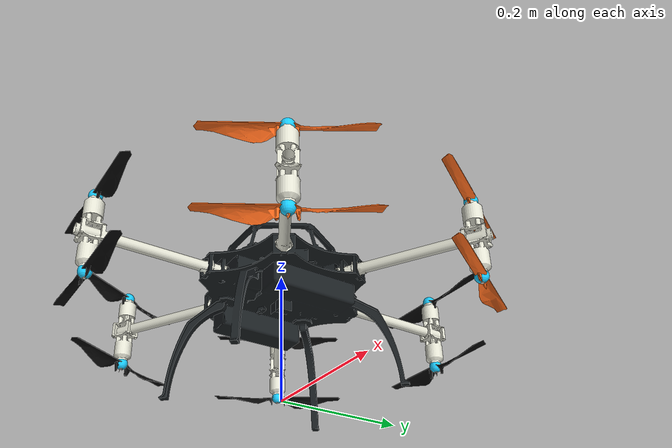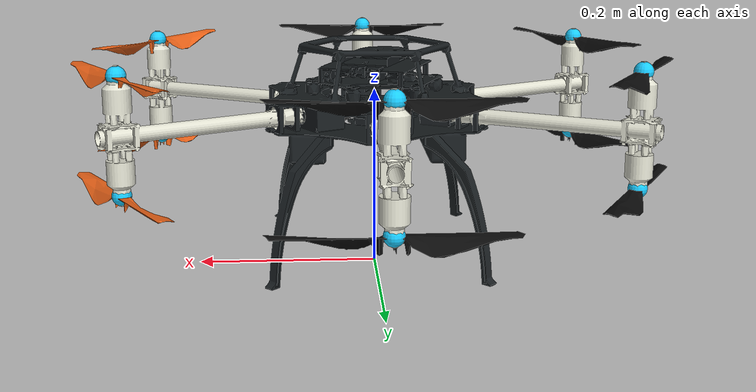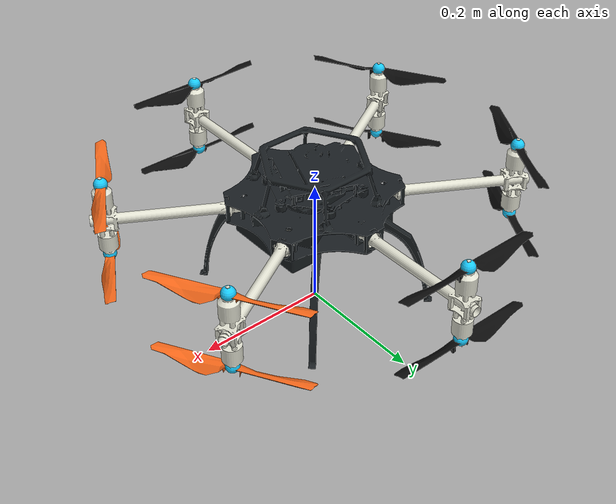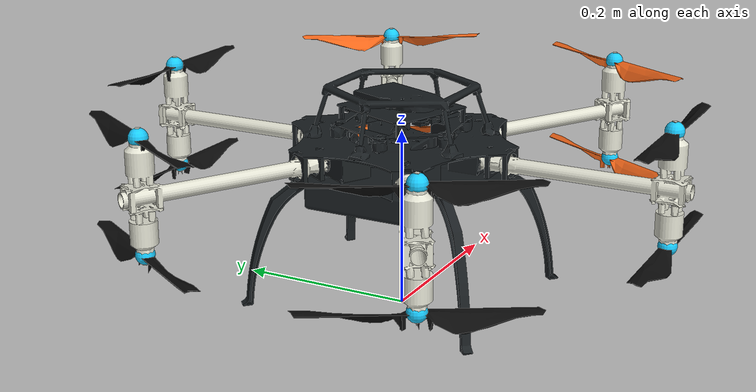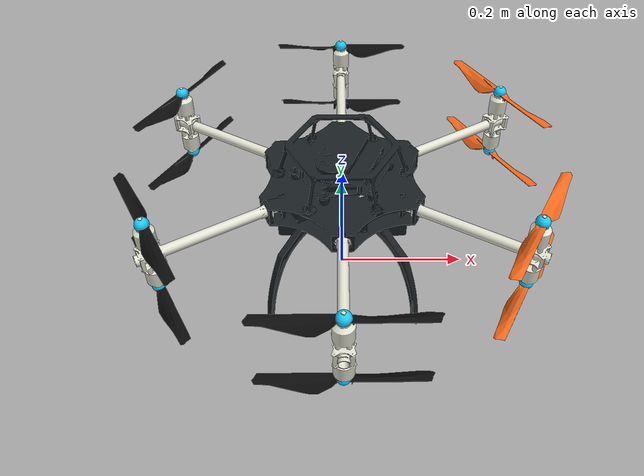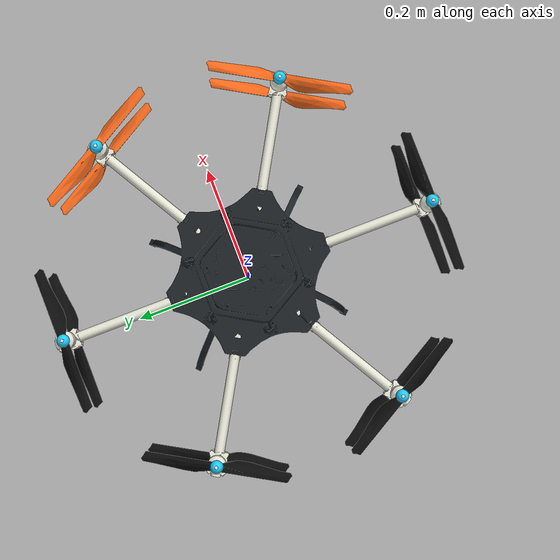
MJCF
<mujoco model="HEXA_model">
  <compiler angle="radian" autolimits="true"/>
  <option timestep="0.002" gravity="0 0 -9.81" integrator="RK4"/>
  <visual>
    <global offwidth="3840" offheight="2160"/>
  </visual>

  <default>
    <joint damping="0.02" armature="0.0002"/>
    <geom condim="3" friction="0.8 0.02 0.001"/>
    <default class="rotor">
      <joint damping="0.00002" armature="0.000001"/>
      <geom type="cylinder" size="0.1143 0.0025" rgba="0.04 0.04 0.04 0.42" mass="0.0065"/>
    </default>
    <default class="tilt">
      <joint type="hinge" axis="1 0 0" limited="true" range="-3.14159265359 3.14159265359" damping="0.25" armature="0.006"/>
      <geom type="box" size="0.035 0.085 0.025" rgba="0.88 0.88 0.82 1"/>
    </default>
  </default>

  <asset>
    <mesh name="omav_core_mesh" file="mesh/omav_core.obj"/>
    <mesh name="omav_tiltarm_mesh" file="mesh/omav_tiltarm.obj"/>
    <mesh name="propeller_cw_mesh" file="mesh/propeller_cw.obj" scale="0.1143 0.1143 0.1143"/>
    <mesh name="propeller_ccw_mesh" file="mesh/propeller_ccw.obj" scale="0.1143 0.1143 0.1143"/>
    <material name="core_mat" rgba="0.08 0.12 0.14 1"/>
    <material name="arm_mat" rgba="0.92 0.58 0.18 1"/>
    <material name="front_rotor_mat" rgba="0.96 0.42 0.12 0.5"/>
    <material name="rear_rotor_mat" rgba="0.15 0.17 0.18 0.45"/>
    <material name="mesh_core_mat" rgba="0.10 0.12 0.13 1"/>
    <material name="mesh_tilt_mat" rgba="0.88 0.88 0.82 1"/>
    <material name="mesh_prop_dark_mat" rgba="0.04 0.04 0.04 1"/>
    <material name="mesh_prop_orange_mat" rgba="0.95 0.40 0.10 1"/>
  </asset>

  <worldbody>
    <body name="base_link" pos="0 0 0.18">
      <freejoint name="root"/>
      <inertial pos="0 0 0" mass="1.61" diaginertia="0.0075 0.010939 0.01369"/>
      <site name="imu_site" pos="0 0 0" quat="0 1 0 0" size="0.004" rgba="0.1 0.7 1 1"/>
      <geom name="core_visual" type="mesh" mesh="omav_core_mesh" material="mesh_core_mat" contype="0" conaffinity="0" density="0"/>
      <geom name="core_collision" type="box" size="0.11 0.11 0.175" rgba="0 0 0 0"/>
      <geom name="arm_right_collision" type="capsule" fromto="0 0 0 0 -0.30 0" size="0.018" rgba="0 0 0 0"/>
      <geom name="arm_left_collision" type="capsule" fromto="0 0 0 0 0.30 0" size="0.018" rgba="0 0 0 0"/>
      <geom name="arm_front_left_collision" type="capsule" fromto="0 0 0 0.2598076 0.15 0" size="0.018" rgba="0 0 0 0"/>
      <geom name="arm_back_right_collision" type="capsule" fromto="0 0 0 -0.2598076 -0.15 0" size="0.018" rgba="0 0 0 0"/>
      <geom name="arm_front_right_collision" type="capsule" fromto="0 0 0 0.2598076 -0.15 0" size="0.018" rgba="0 0 0 0"/>
      <geom name="arm_back_left_collision" type="capsule" fromto="0 0 0 -0.2598076 0.15 0" size="0.018" rgba="0 0 0 0"/>

      <body name="tilt_unit_0" pos="0 -0.30 0" euler="0 0 4.71238898038">
        <joint name="tilt_unit_0_revolutejoint" class="tilt"/>
        <inertial pos="0 0 0" mass="0.277" diaginertia="0.00034257 0.0013205 0.0010037"/>
        <geom name="tilt_visual_0" type="mesh" mesh="omav_tiltarm_mesh" material="mesh_tilt_mat" contype="0" conaffinity="0" density="0"/>
        <geom name="tilt_collision_0" class="tilt" rgba="0 0 0 0"/>
        <body name="rotor_0" pos="0 0 0.06">
          <joint name="rotor_0_joint" class="rotor" axis="0 0 1"/>
          <geom name="rotor_0_disc" class="rotor" rgba="0 0 0 0"/>
          <geom name="rotor_0_visual" type="mesh" mesh="propeller_cw_mesh" material="mesh_prop_dark_mat" contype="0" conaffinity="0" density="0"/>
          <site name="rotor_0_thrust" pos="0 0 0" size="0.01" rgba="0.1 0.8 1 1"/>
        </body>
        <body name="rotor_6" pos="0 0 -0.06">
          <joint name="rotor_6_joint" class="rotor" axis="0 0 1"/>
          <geom name="rotor_6_disc" class="rotor" rgba="0 0 0 0"/>
          <geom name="rotor_6_visual" type="mesh" mesh="propeller_cw_mesh" material="mesh_prop_dark_mat" contype="0" conaffinity="0" density="0"/>
          <site name="rotor_6_thrust" pos="0 0 0" size="0.01" rgba="0.1 0.8 1 1"/>
        </body>
      </body>

      <body name="tilt_unit_1" pos="0 0.30 0" euler="0 0 1.57079632679">
        <joint name="tilt_unit_1_revolutejoint" class="tilt"/>
        <inertial pos="0 0 0" mass="0.277" diaginertia="0.00034257 0.0013205 0.0010037"/>
        <geom name="tilt_visual_1" type="mesh" mesh="omav_tiltarm_mesh" material="mesh_tilt_mat" contype="0" conaffinity="0" density="0"/>
        <geom name="tilt_collision_1" class="tilt" rgba="0 0 0 0"/>
        <body name="rotor_1" pos="0 0 0.06">
          <joint name="rotor_1_joint" class="rotor" axis="0 0 1"/>
          <geom name="rotor_1_disc" class="rotor" rgba="0 0 0 0"/>
          <geom name="rotor_1_visual" type="mesh" mesh="propeller_ccw_mesh" material="mesh_prop_dark_mat" contype="0" conaffinity="0" density="0"/>
          <site name="rotor_1_thrust" pos="0 0 0" size="0.01" rgba="0.1 0.8 1 1"/>
        </body>
        <body name="rotor_7" pos="0 0 -0.06">
          <joint name="rotor_7_joint" class="rotor" axis="0 0 1"/>
          <geom name="rotor_7_disc" class="rotor" rgba="0 0 0 0"/>
          <geom name="rotor_7_visual" type="mesh" mesh="propeller_ccw_mesh" material="mesh_prop_dark_mat" contype="0" conaffinity="0" density="0"/>
          <site name="rotor_7_thrust" pos="0 0 0" size="0.01" rgba="0.1 0.8 1 1"/>
        </body>
      </body>

      <body name="tilt_unit_2" pos="0.2598076 0.15 0" euler="0 0 0.52359877559">
        <joint name="tilt_unit_2_revolutejoint" class="tilt"/>
        <inertial pos="0 0 0" mass="0.277" diaginertia="0.00034257 0.0013205 0.0010037"/>
        <geom name="tilt_visual_2" type="mesh" mesh="omav_tiltarm_mesh" material="mesh_tilt_mat" contype="0" conaffinity="0" density="0"/>
        <geom name="tilt_collision_2" class="tilt" rgba="0 0 0 0"/>
        <body name="rotor_2" pos="0 0 0.06">
          <joint name="rotor_2_joint" class="rotor" axis="0 0 1"/>
          <geom name="rotor_2_disc" class="rotor" rgba="0 0 0 0"/>
          <geom name="rotor_2_visual" type="mesh" mesh="propeller_cw_mesh" material="mesh_prop_orange_mat" contype="0" conaffinity="0" density="0"/>
          <site name="rotor_2_thrust" pos="0 0 0" size="0.01" rgba="0.1 0.8 1 1"/>
        </body>
        <body name="rotor_8" pos="0 0 -0.06">
          <joint name="rotor_8_joint" class="rotor" axis="0 0 1"/>
          <geom name="rotor_8_disc" class="rotor" rgba="0 0 0 0"/>
          <geom name="rotor_8_visual" type="mesh" mesh="propeller_cw_mesh" material="mesh_prop_orange_mat" contype="0" conaffinity="0" density="0"/>
          <site name="rotor_8_thrust" pos="0 0 0" size="0.01" rgba="0.1 0.8 1 1"/>
        </body>
      </body>

      <body name="tilt_unit_3" pos="-0.2598076 -0.15 0" euler="0 0 3.66519142919">
        <joint name="tilt_unit_3_revolutejoint" class="tilt"/>
        <inertial pos="0 0 0" mass="0.277" diaginertia="0.00034257 0.0013205 0.0010037"/>
        <geom name="tilt_visual_3" type="mesh" mesh="omav_tiltarm_mesh" material="mesh_tilt_mat" contype="0" conaffinity="0" density="0"/>
        <geom name="tilt_collision_3" class="tilt" rgba="0 0 0 0"/>
        <body name="rotor_3" pos="0 0 0.06">
          <joint name="rotor_3_joint" class="rotor" axis="0 0 1"/>
          <geom name="rotor_3_disc" class="rotor" rgba="0 0 0 0"/>
          <geom name="rotor_3_visual" type="mesh" mesh="propeller_ccw_mesh" material="mesh_prop_dark_mat" contype="0" conaffinity="0" density="0"/>
          <site name="rotor_3_thrust" pos="0 0 0" size="0.01" rgba="0.1 0.8 1 1"/>
        </body>
        <body name="rotor_9" pos="0 0 -0.06">
          <joint name="rotor_9_joint" class="rotor" axis="0 0 1"/>
          <geom name="rotor_9_disc" class="rotor" rgba="0 0 0 0"/>
          <geom name="rotor_9_visual" type="mesh" mesh="propeller_ccw_mesh" material="mesh_prop_dark_mat" contype="0" conaffinity="0" density="0"/>
          <site name="rotor_9_thrust" pos="0 0 0" size="0.01" rgba="0.1 0.8 1 1"/>
        </body>
      </body>

      <body name="tilt_unit_4" pos="0.2598076 -0.15 0" euler="0 0 5.75958653158">
        <joint name="tilt_unit_4_revolutejoint" class="tilt"/>
        <inertial pos="0 0 0" mass="0.277" diaginertia="0.00034257 0.0013205 0.0010037"/>
        <geom name="tilt_visual_4" type="mesh" mesh="omav_tiltarm_mesh" material="mesh_tilt_mat" contype="0" conaffinity="0" density="0"/>
        <geom name="tilt_collision_4" class="tilt" rgba="0 0 0 0"/>
        <body name="rotor_4" pos="0 0 0.06">
          <joint name="rotor_4_joint" class="rotor" axis="0 0 1"/>
          <geom name="rotor_4_disc" class="rotor" rgba="0 0 0 0"/>
          <geom name="rotor_4_visual" type="mesh" mesh="propeller_ccw_mesh" material="mesh_prop_orange_mat" contype="0" conaffinity="0" density="0"/>
          <site name="rotor_4_thrust" pos="0 0 0" size="0.01" rgba="0.1 0.8 1 1"/>
        </body>
        <body name="rotor_10" pos="0 0 -0.06">
          <joint name="rotor_10_joint" class="rotor" axis="0 0 1"/>
          <geom name="rotor_10_disc" class="rotor" rgba="0 0 0 0"/>
          <geom name="rotor_10_visual" type="mesh" mesh="propeller_ccw_mesh" material="mesh_prop_orange_mat" contype="0" conaffinity="0" density="0"/>
          <site name="rotor_10_thrust" pos="0 0 0" size="0.01" rgba="0.1 0.8 1 1"/>
        </body>
      </body>

      <body name="tilt_unit_5" pos="-0.2598076 0.15 0" euler="0 0 2.61799387799">
        <joint name="tilt_unit_5_revolutejoint" class="tilt"/>
        <inertial pos="0 0 0" mass="0.277" diaginertia="0.00034257 0.0013205 0.0010037"/>
        <geom name="tilt_visual_5" type="mesh" mesh="omav_tiltarm_mesh" material="mesh_tilt_mat" contype="0" conaffinity="0" density="0"/>
        <geom name="tilt_collision_5" class="tilt" rgba="0 0 0 0"/>
        <body name="rotor_5" pos="0 0 0.06">
          <joint name="rotor_5_joint" class="rotor" axis="0 0 1"/>
          <geom name="rotor_5_disc" class="rotor" rgba="0 0 0 0"/>
          <geom name="rotor_5_visual" type="mesh" mesh="propeller_cw_mesh" material="mesh_prop_dark_mat" contype="0" conaffinity="0" density="0"/>
          <site name="rotor_5_thrust" pos="0 0 0" size="0.01" rgba="0.1 0.8 1 1"/>
        </body>
        <body name="rotor_11" pos="0 0 -0.06">
          <joint name="rotor_11_joint" class="rotor" axis="0 0 1"/>
          <geom name="rotor_11_disc" class="rotor" rgba="0 0 0 0"/>
          <geom name="rotor_11_visual" type="mesh" mesh="propeller_cw_mesh" material="mesh_prop_dark_mat" contype="0" conaffinity="0" density="0"/>
          <site name="rotor_11_thrust" pos="0 0 0" size="0.01" rgba="0.1 0.8 1 1"/>
        </body>
      </body>
    </body>
  </worldbody>

  <actuator>
    <position name="tilt_0_position" joint="tilt_unit_0_revolutejoint" kp="12" kv="1.0" ctrlrange="-3.14159265359 3.14159265359"/>
    <position name="tilt_1_position" joint="tilt_unit_1_revolutejoint" kp="12" kv="1.0" ctrlrange="-3.14159265359 3.14159265359"/>
    <position name="tilt_2_position" joint="tilt_unit_2_revolutejoint" kp="12" kv="1.0" ctrlrange="-3.14159265359 3.14159265359"/>
    <position name="tilt_3_position" joint="tilt_unit_3_revolutejoint" kp="12" kv="1.0" ctrlrange="-3.14159265359 3.14159265359"/>
    <position name="tilt_4_position" joint="tilt_unit_4_revolutejoint" kp="12" kv="1.0" ctrlrange="-3.14159265359 3.14159265359"/>
    <position name="tilt_5_position" joint="tilt_unit_5_revolutejoint" kp="12" kv="1.0" ctrlrange="-3.14159265359 3.14159265359"/>
    <general name="rotor_0_thrust" site="rotor_0_thrust" gear="0 0 1 0 0 0.05" ctrlrange="0 10"/>
    <general name="rotor_1_thrust" site="rotor_1_thrust" gear="0 0 1 0 0 -0.05" ctrlrange="0 10"/>
    <general name="rotor_2_thrust" site="rotor_2_thrust" gear="0 0 1 0 0 0.05" ctrlrange="0 10"/>
    <general name="rotor_3_thrust" site="rotor_3_thrust" gear="0 0 1 0 0 -0.05" ctrlrange="0 10"/>
    <general name="rotor_4_thrust" site="rotor_4_thrust" gear="0 0 1 0 0 -0.05" ctrlrange="0 10"/>
    <general name="rotor_5_thrust" site="rotor_5_thrust" gear="0 0 1 0 0 0.05" ctrlrange="0 10"/>
    <general name="rotor_6_thrust" site="rotor_6_thrust" gear="0 0 1 0 0 0.05" ctrlrange="0 10"/>
    <general name="rotor_7_thrust" site="rotor_7_thrust" gear="0 0 1 0 0 -0.05" ctrlrange="0 10"/>
    <general name="rotor_8_thrust" site="rotor_8_thrust" gear="0 0 1 0 0 0.05" ctrlrange="0 10"/>
    <general name="rotor_9_thrust" site="rotor_9_thrust" gear="0 0 1 0 0 -0.05" ctrlrange="0 10"/>
    <general name="rotor_10_thrust" site="rotor_10_thrust" gear="0 0 1 0 0 -0.05" ctrlrange="0 10"/>
    <general name="rotor_11_thrust" site="rotor_11_thrust" gear="0 0 1 0 0 0.05" ctrlrange="0 10"/>
  </actuator>

  <sensor>
    <framequat name="imu_quat" objtype="site" objname="imu_site"/>
    <gyro name="imu_gyro" site="imu_site"/>
    <accelerometer name="imu_acc" site="imu_site"/>
    <framepos name="body_pos" objtype="body" objname="base_link"/>
    <framelinvel name="body_linvel" objtype="body" objname="base_link"/>
    <jointpos name="encoder_hexa_alpha0" joint="tilt_unit_0_revolutejoint"/>
    <jointpos name="encoder_hexa_alpha1" joint="tilt_unit_1_revolutejoint"/>
    <jointpos name="encoder_hexa_alpha2" joint="tilt_unit_2_revolutejoint"/>
    <jointpos name="encoder_hexa_alpha3" joint="tilt_unit_3_revolutejoint"/>
    <jointpos name="encoder_hexa_alpha4" joint="tilt_unit_4_revolutejoint"/>
    <jointpos name="encoder_hexa_alpha5" joint="tilt_unit_5_revolutejoint"/>
  </sensor>
</mujoco>
